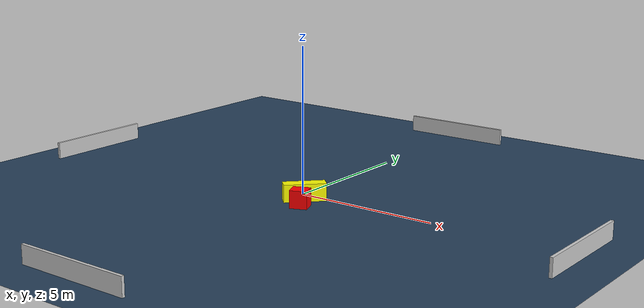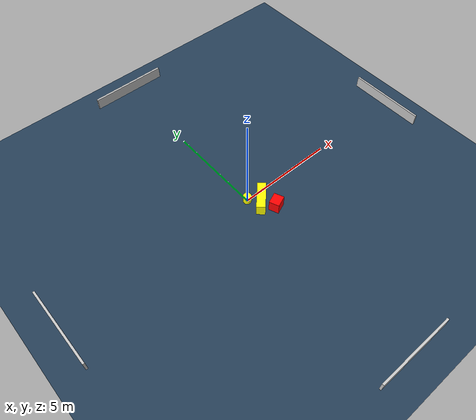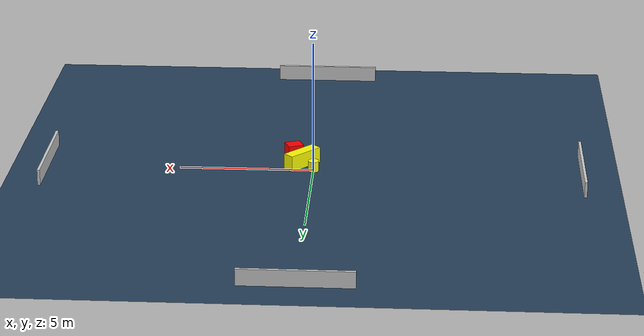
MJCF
<?xml version="1.0" ?>
<mujoco model="generated_environment">
  <option timestep="0.01" integrator="RK4" cone="elliptic"/>
  <default>
    <geom density="1"/>
  </default>
  <asset>
    <texture builtin="gradient" height="3072" name="skybox" rgb1="0.3 0.5 0.7" rgb2="0 0 0" type="skybox" width="512"/>
    <texture builtin="checker" height="300" name="groundplane" rgb1="0.2 0.3 0.4" rgb2="0.1 0.2 0.3" type="2d" width="300"/>
    <material name="groundplane" reflectance="0.2" texrepeat="5 5" texture="groundplane"/>
  </asset>
  <worldbody>
    <light dir="0 0 -1" directional="true" pos="0 0 1.5"/>
    <geom condim="3" friction="0.5 0.005 0.001" material="groundplane" name="floor" pos="0 0 0" size="0 0 0.05" type="plane"/>
    <body name="walls">
      <geom name="wall_1" condim="4" pos="-10.0 0.0 0.3" rgba="0.800000011920929 0.800000011920929 0.800000011920929 1.0" size="0.05 2.0 0.3" type="box"/>
      <geom name="wall_2" condim="4" pos="10.0 0.0 0.3" rgba="0.800000011920929 0.800000011920929 0.800000011920929 1.0" size="0.05 2.0 0.3" type="box"/>
      <geom name="wall_3" condim="4" pos="0.0 -10.0 0.3" rgba="0.800000011920929 0.800000011920929 0.800000011920929 1.0" size="2.0 0.05 0.3" type="box"/>
      <geom name="wall_4" condim="4" pos="0.0 10.0 0.3" rgba="0.800000011920929 0.800000011920929 0.800000011920929 1.0" size="2.0 0.05 0.3" type="box"/>
    </body>
    <body name="robot">
      <joint name="joint_x" type="slide" pos="0 0 0" axis="1 0 0"/>
      <joint name="joint_y" type="slide" pos="0 0 0" axis="0 1 0"/>
      <geom name="robot" type="cylinder" pos="0.0 0.0 0.2" size="0.2 0.2 0.0" mass="5.0" friction="1.0 0.005 0.0001" condim="4" rgba="1.0 1.0 0.0 1.0"/>
    </body>
    <body name="obstacle_1_movable">
      <geom name="obstacle_1_movable" condim="4" pos="0.4533516905215401 -0.48836789358756044 0.3" euler="0 0 46.3808111072162" friction="0.0 0.005 0.001" rgba="1.0 1.0 0.0 1.0" size="0.712065007152108 0.21725943812015291 0.3" type="box" mass="0.1"/>
      <joint type="free"/>
    </body>
    <body name="obstacle_2_static">
      <geom name="obstacle_2_static" condim="4" pos="0.804634022668231 -1.1635204946976276 0.3" euler="0 0 22.403796663461605" friction="0.0 0.005 0.001" rgba="1.0 0.0 0.0 1.0" size="0.2930220034818923 0.25422593389355824 0.3" type="box"/>
    </body>
  </worldbody>
  <actuator>
    <motor name="actuator_x" joint="joint_x" gear="1" ctrlrange="-1 1"/>
    <motor name="actuator_y" joint="joint_y" gear="1" ctrlrange="-1 1"/>
  </actuator>
</mujoco>
